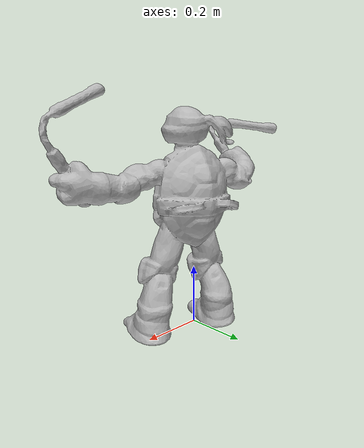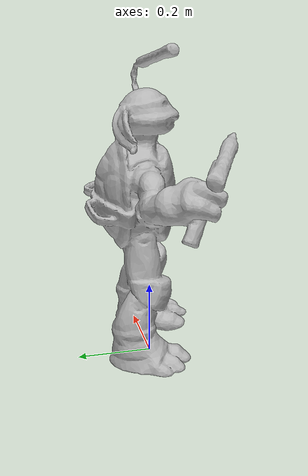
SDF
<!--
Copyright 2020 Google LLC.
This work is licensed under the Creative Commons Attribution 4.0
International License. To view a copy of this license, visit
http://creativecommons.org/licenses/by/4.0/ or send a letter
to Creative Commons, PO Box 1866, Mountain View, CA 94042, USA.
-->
<?xml version="1.0" ?>
<sdf version="1.6">
  <model name="Nickelodeon_Teenage_Mutant_Ninja_Turtles_Michelangelo">
    <link name="link_0">
      <visual name="visual">
        <geometry>
          <mesh>
            <uri>meshes/model.obj</uri>
            <scale> 7 7 7 </scale>
          </mesh>
        </geometry>
      </visual>
      <collision name="collision_0">
        <geometry>
          <mesh>
            <uri>meshes/model.obj</uri>
            <scale> 7 7 7 </scale>
          </mesh>
        </geometry>
      </collision>
    </link>
  </model>
</sdf>
